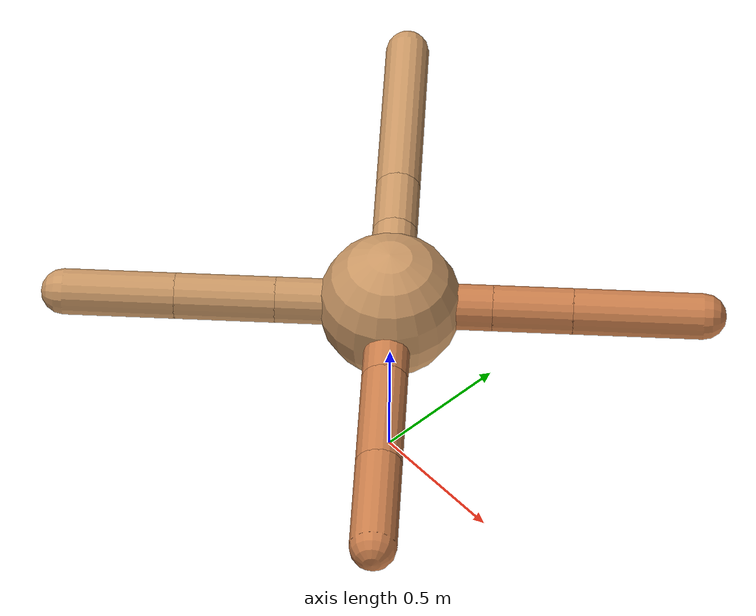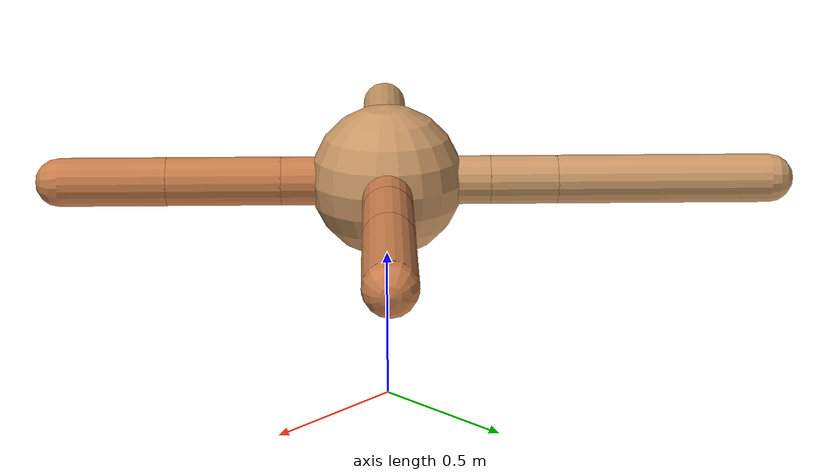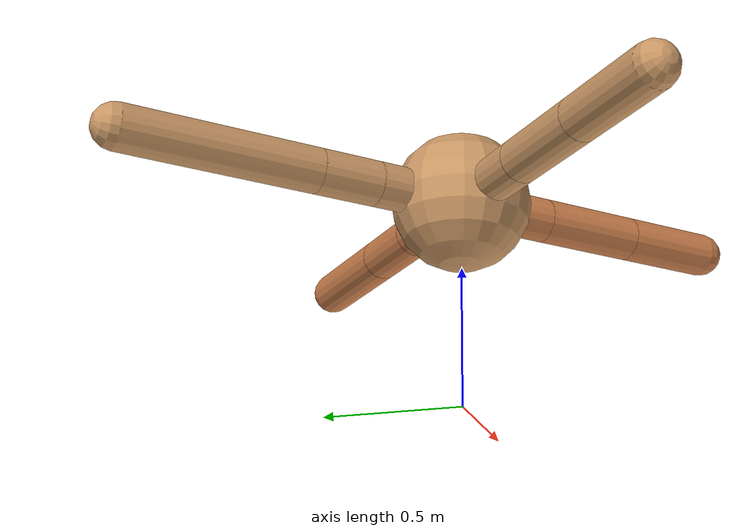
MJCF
<mujoco model="ant">
  <compiler angle="degree" coordinate="local" inertiafromgeom="true" />
  <option integrator="RK4" timestep="0.01" />
  <custom>
    <numeric data="0.0 0.0 0.55 1.0 0.0 0.0 0.0 0.0 1.0 0.0 -1.0 0.0 -1.0 0.0 1.0" name="init_qpos" />
  </custom>
  <default>
    <joint armature="1" damping="1" limited="true" />
    <geom conaffinity="0" condim="3" density="5.0" friction="1.5 0.1 0.1" margin="0.01" rgba="0.8 0.6 0.4 1" />
  </default>
  <worldbody>
    <body name="torso" pos="0 0 0.75">
      <geom name="torso_geom" pos="0 0 0" size="0.25" type="sphere" />

      <body name="front_left_leg" pos="0 0 0">
        <geom fromto="0.0 0.0 0.0 0.2516163300213509 0.2516163300213509 0.0" name="aux_1_geom" size="0.08" type="capsule" rgba=".8 .5 .3 1" />
        <body name="aux_1" pos="0.2516163300213509 0.2516163300213509 0.0">
          <joint axis="0 0 1" name="hip_1" pos="0.0 0.0 0.0" range="-40 40" type="hinge" />
          <geom fromto="0.0 0.0 0.0 0.19676818132563648 0.19676818132563648 0.0" name="left_leg_geom" size="0.08" type="capsule" rgba=".8 .5 .3 1" />
          <body pos="0.19676818132563648 0.19676818132563648 0.0" name="front_left_foot">
            <joint axis="-1 1 0" name="ankle_1" pos="0.0 0.0 0.0" range="30 100" type="hinge" />
            <geom fromto="0.0 0.0 0.0 0.31925067523149575 0.31925067523149575 0.0" name="left_ankle_geom" size="0.08" type="capsule" rgba=".8 .5 .3 1" />
          </body>
        </body>
      </body>
      <body name="front_right_leg" pos="0 0 0">
        <geom fromto="0.0 0.0 0.0 -0.2393589406524419 0.2393589406524419 0.0" name="aux_2_geom" size="0.08" type="capsule" />
        <body name="aux_2" pos="-0.2393589406524419 0.2393589406524419 0.0">
          <joint axis="0 0 1" name="hip_2" pos="0.0 0.0 0.0" range="-40 40" type="hinge" />
          <geom fromto="0.0 0.0 0.0 -0.15550633094017716 0.15550633094017716 0.0" name="right_leg_geom" size="0.08" type="capsule" />
          <body pos="-0.15550633094017716 0.15550633094017716 0.0" name="front_right_foot">
            <joint axis="1 1 0" name="ankle_2" pos="0.0 0.0 0.0" range="-100 -30" type="hinge" />
            <geom fromto="0.0 0.0 0.0 -0.4954278384650075 0.4954278384650075 0.0" name="right_ankle_geom" size="0.08" type="capsule" />
          </body>
        </body>
      </body>
      <body name="left_back_leg" pos="0 0 0">
        <geom fromto="0.0 0.0 0.0 -0.280461458857528 -0.280461458857528 0.0" name="aux_3_geom" size="0.08" type="capsule" />
        <body name="aux_3" pos="-0.280461458857528 -0.280461458857528 0.0">
          <joint axis="0 0 1" name="hip_3" pos="0.0 0.0 0.0" range="-40 40" type="hinge" />
          <geom fromto="0.0 0.0 0.0 -0.24721896054505496 -0.24721896054505496 0.0" name="back_leg_geom" size="0.08" type="capsule" />
          <body pos="-0.24721896054505496 -0.24721896054505496 0.0" name="left_back_foot">
            <joint axis="-1 1 0" name="ankle_3" pos="0.0 0.0 0.0" range="-100 -30" type="hinge" />
            <geom fromto="0.0 0.0 0.0 -0.27523631487139405 -0.27523631487139405 0.0" name="third_ankle_geom" size="0.08" type="capsule" />
          </body>
        </body>
      </body>
      <body name="right_back_leg" pos="0 0 0">
        <geom fromto="0.0 0.0 0.0 0.2440251056045092 -0.2440251056045092 0.0" name="aux_4_geom" size="0.08" type="capsule" rgba=".8 .5 .3 1" />
        <body name="aux_4" pos="0.2440251056045092 -0.2440251056045092 0.0">
          <joint axis="0 0 1" name="hip_4" pos="0.0 0.0 0.0" range="-40 40" type="hinge" />
          <geom fromto="0.0 0.0 0.0 0.2636982377649039 -0.2636982377649039 0.0" name="rightback_leg_geom" size="0.08" type="capsule" rgba=".8 .5 .3 1" />
          <body pos="0.2636982377649039 -0.2636982377649039 0.0" name="right_back_foot">
            <joint axis="1 1 0" name="ankle_4" pos="0.0 0.0 0.0" range="30 100" type="hinge" />
            <geom fromto="0.0 0.0 0.0 0.24745882792492405 -0.24745882792492405 0.0" name="fourth_ankle_geom" size="0.08" type="capsule" rgba=".8 .5 .3 1" />
          </body>
        </body>
      </body>
    </body>
  </worldbody>
  <actuator>
    <motor ctrllimited="true" ctrlrange="-1.0 1.0" joint="hip_4" gear="150" />
    <motor ctrllimited="true" ctrlrange="-1.0 1.0" joint="ankle_4" gear="150" />
    <motor ctrllimited="true" ctrlrange="-1.0 1.0" joint="hip_1" gear="150" />
    <motor ctrllimited="true" ctrlrange="-1.0 1.0" joint="ankle_1" gear="150" />
    <motor ctrllimited="true" ctrlrange="-1.0 1.0" joint="hip_2" gear="150" />
    <motor ctrllimited="true" ctrlrange="-1.0 1.0" joint="ankle_2" gear="150" />
    <motor ctrllimited="true" ctrlrange="-1.0 1.0" joint="hip_3" gear="150" />
    <motor ctrllimited="true" ctrlrange="-1.0 1.0" joint="ankle_3" gear="150" />
  </actuator>
</mujoco>
